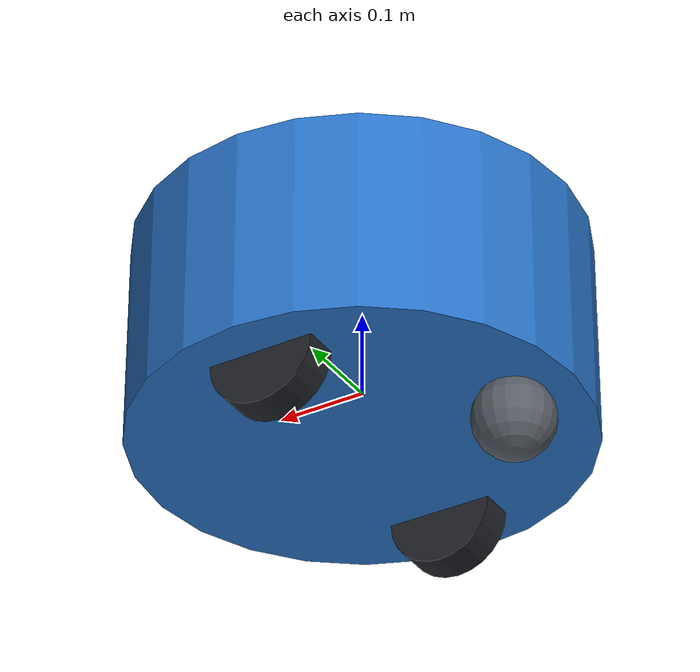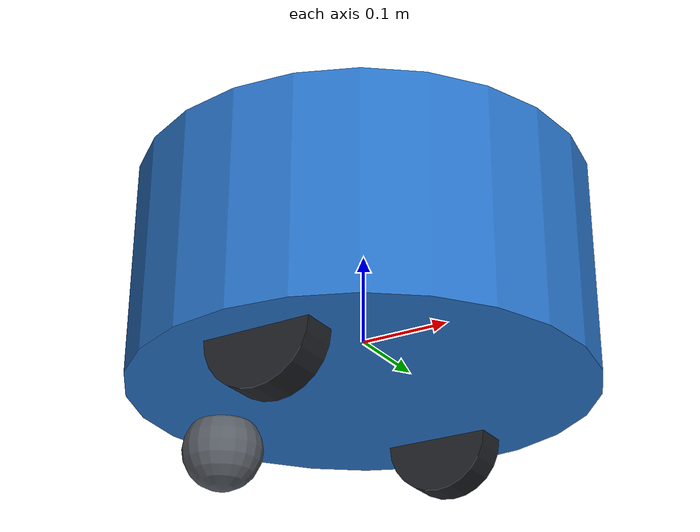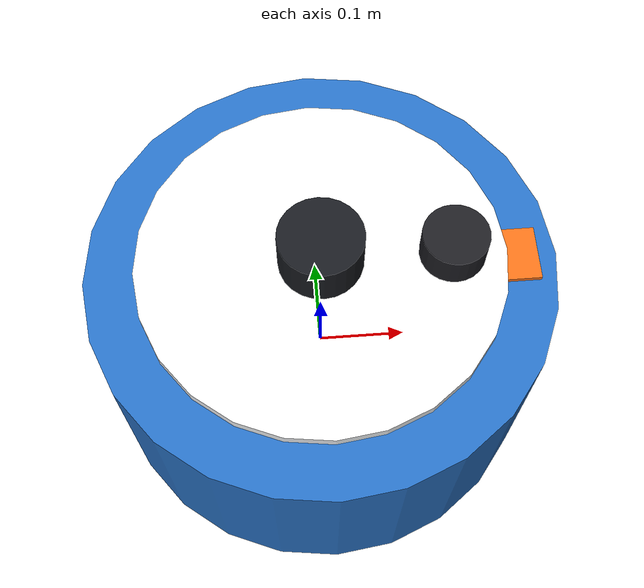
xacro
<?xml version="1.0"?>
<!-- FleetFlow-ROS2 AGV: 差速底盘 + 360° LiDAR，robot_id 决定命名空间与配色 -->
<robot xmlns:xacro="http://www.ros.org/wiki/xacro" name="agv">

  <xacro:arg name="robot_id" default="0"/>
  <xacro:arg name="body_color" default="0.16 0.45 0.78"/>

  <xacro:property name="robot_id"   value="$(arg robot_id)"/>
  <xacro:property name="body_color" value="$(arg body_color)"/>

  <!-- 尺寸：**直径 0.50 m 的圆盘差速底盘**（layout.AGV 是同一份规格）。
       工业 AGV 多用圆车：任意朝向占地相同，避让判据不必分朝向。
       参数取公开规格的量级（松灵/宇树这类底盘：直径 0.4~0.6 m、
       高 0.25~0.35 m、轮距约 0.36 m、带 360° 雷达）。 -->
  <xacro:property name="body_r"   value="0.25"/>   <!-- 半径 = 直径 0.50 -->
  <xacro:property name="body_h"   value="0.24"/>
  <xacro:property name="wheel_r"  value="0.06"/>
  <xacro:property name="wheel_w"  value="0.04"/>
  <xacro:property name="sep"      value="0.36"/>   <!-- 轮距（左右轮中心距） -->
  <xacro:property name="deck_z"   value="${body_h/2 + 0.012}"/>

  <link name="base_footprint"/>

  <joint name="base_joint" type="fixed">
    <parent link="base_footprint"/>
    <child link="base_link"/>
    <origin xyz="0 0 ${wheel_r}" rpy="0 0 0"/>
  </joint>

  <link name="base_link">
    <visual name="body">
      <geometry><cylinder radius="${body_r}" length="${body_h}"/></geometry>
      <material name="body"><color rgba="${body_color} 1"/></material>
    </visual>
    <!-- 顶面浅色甲板（圆），俯视时能一眼分清车体 -->
    <visual name="deck">
      <origin xyz="0 0 ${deck_z}" rpy="0 0 0"/>
      <geometry><cylinder radius="${body_r*0.78}" length="0.012"/></geometry>
      <material name="deck"><color rgba="0.96 0.97 0.98 1"/></material>
    </visual>
    <!-- 车头指向标记：俯视时的朝向全靠它 -->
    <visual name="nose">
      <origin xyz="${body_r*0.72} 0 ${body_h/2 - 0.005}" rpy="0 0 0"/>
      <geometry><box size="0.10 0.06 0.02"/></geometry>
      <material name="nose"><color rgba="1.0 0.45 0.10 1"/></material>
    </visual>
    <!-- 360° 雷达（顶部圆柱），与 LiDAR 安装高度一致 -->
    <visual name="lidar">
      <origin xyz="${body_r*0.55} 0 ${body_h/2 + 0.03}" rpy="0 0 0"/>
      <geometry><cylinder radius="0.035" length="0.05"/></geometry>
      <material name="lidar"><color rgba="0.12 0.12 0.14 1"/></material>
    </visual>
    <collision name="body_c">
      <geometry><cylinder radius="${body_r}" length="${body_h}"/></geometry>
    </collision>
    <inertial>
      <mass value="12.0"/>
      <inertia ixx="0.20" ixy="0" ixz="0" iyy="0.30" iyz="0" izz="0.44"/>
    </inertial>
  </link>

  <xacro:macro name="wheel" params="side sign">
    <link name="${side}_wheel">
      <visual name="v">
        <geometry><cylinder radius="${wheel_r}" length="${wheel_w}"/></geometry>
        <material name="tyre"><color rgba="0.12 0.13 0.15 1"/></material>
      </visual>
      <collision name="c">
        <geometry><cylinder radius="${wheel_r}" length="${wheel_w}"/></geometry>
      </collision>
      <inertial><mass value="0.6"/><inertia ixx="0.002" ixy="0" ixz="0" iyy="0.002" iyz="0" izz="0.002"/></inertial>
    </link>
    <joint name="${side}_wheel_joint" type="continuous">
      <parent link="base_link"/>
      <child link="${side}_wheel"/>
      <origin xyz="0 ${sign*sep/2} ${-body_h/2}" rpy="-1.5708 0 0"/>
      <axis xyz="0 0 1"/>
    </joint>
    <!-- 轮辐，旋转时能看出车在动 -->
    <link name="${side}_hub">
      <visual name="v">
        <geometry><box size="${wheel_r*1.4} 0.006 ${wheel_r*0.14}"/></geometry>
        <material name="hub"><color rgba="0.90 0.92 0.95 1"/></material>
      </visual>
    </link>
    <joint name="${side}_hub_joint" type="fixed">
      <parent link="${side}_wheel"/>
      <child link="${side}_hub"/>
      <origin xyz="0 ${sign*wheel_w/2} 0" rpy="0 0 0"/>
    </joint>
  </xacro:macro>

  <xacro:wheel side="left"  sign="1"/>
  <xacro:wheel side="right" sign="-1"/>

  <link name="caster">
    <visual name="v"><geometry><sphere radius="0.045"/></geometry>
      <material name="caster"><color rgba="0.35 0.37 0.40 1"/></material></visual>
    <collision name="c"><geometry><sphere radius="0.045"/></geometry></collision>
    <inertial><mass value="0.2"/><inertia ixx="0.0004" ixy="0" ixz="0" iyy="0.0004" iyz="0" izz="0.0004"/></inertial>
  </link>
  <joint name="caster_joint" type="fixed">
    <parent link="base_link"/>
    <child link="caster"/>
    <origin xyz="${-body_r*0.72} 0 ${-body_h/2 - 0.03}" rpy="0 0 0"/>
  </joint>

  <link name="lidar_link">
    <visual name="v"><geometry><cylinder radius="0.045" length="0.05"/></geometry>
      <material name="lidar"><color rgba="0.10 0.11 0.13 1"/></material></visual>
    <inertial><mass value="0.15"/><inertia ixx="0.0002" ixy="0" ixz="0" iyy="0.0002" iyz="0" izz="0.0002"/></inertial>
  </link>
  <joint name="lidar_joint" type="fixed">
    <parent link="base_link"/>
    <child link="lidar_link"/>
    <origin xyz="0 0 ${body_h/2 + 0.045}" rpy="0 0 0"/>
  </joint>

  <!-- ============ Gazebo Sim 系统 ============ -->
  <gazebo>
    <plugin filename="gz-sim-diff-drive-system" name="gz::sim::systems::DiffDrive">
      <left_joint>left_wheel_joint</left_joint>
      <right_joint>right_wheel_joint</right_joint>
      <wheel_separation>${sep}</wheel_separation>
      <wheel_radius>${wheel_r}</wheel_radius>
      <max_linear_acceleration>1.2</max_linear_acceleration>
      <min_linear_acceleration>-2.5</min_linear_acceleration>
      <max_angular_acceleration>2.5</max_angular_acceleration>
      <max_wheel_torque>20.0</max_wheel_torque>
      <max_wheel_acceleration>8.0</max_wheel_acceleration>
      <!-- 话题必须按机器人加命名空间，否则多台车会共用 /odom /cmd_vel 互相串指令 -->
      <odom_topic>/robot_$(arg robot_id)/odom</odom_topic>
      <tf_topic>/robot_$(arg robot_id)/tf</tf_topic>
      <topic>/robot_$(arg robot_id)/cmd_vel</topic>
    </plugin>
    <plugin filename="gz-sim-joint-state-publisher-system" name="gz::sim::systems::JointStatePublisher">
      <topic>/robot_$(arg robot_id)/joint_states</topic>
    </plugin>
  </gazebo>

  <gazebo reference="lidar_link">
    <sensor name="lidar" type="gpu_lidar">
      <topic>/robot_$(arg robot_id)/scan</topic>
      <update_rate>8.0</update_rate>
      <always_on>1</always_on>
      <visualize>false</visualize>
      <lidar>
        <scan>
          <horizontal>
            <samples>360</samples>
            <resolution>1</resolution>
            <min_angle>-3.14159</min_angle>
            <max_angle>3.14159</max_angle>
          </horizontal>
        </scan>
        <range><min>0.12</min><max>12.0</max><resolution>0.01</resolution></range>
        <!-- 量程 12 m 与 layout.AGV['lidar_range'] 一致：主通道 9.2 m 内可全见 -->
      </lidar>
    </sensor>
  </gazebo>

  <gazebo reference="base_link"><material>Gazebo/FlatBlack</material></gazebo>
  <gazebo reference="left_wheel"><material>Gazebo/Black</material></gazebo>
  <gazebo reference="right_wheel"><material>Gazebo/Black</material></gazebo>
  <!-- 万向轮是被动支撑，摩擦要低，否则会拖着车不让走 -->
  <gazebo reference="caster">
    <mu1>0.05</mu1><mu2>0.05</mu2>
    <kp>1000000.0</kp><kd>100.0</kd>
  </gazebo>
  <!-- 车体不许蹭地 -->
  <gazebo reference="base_link">
    <mu1>0.02</mu1><mu2>0.02</mu2>
  </gazebo>
</robot>
